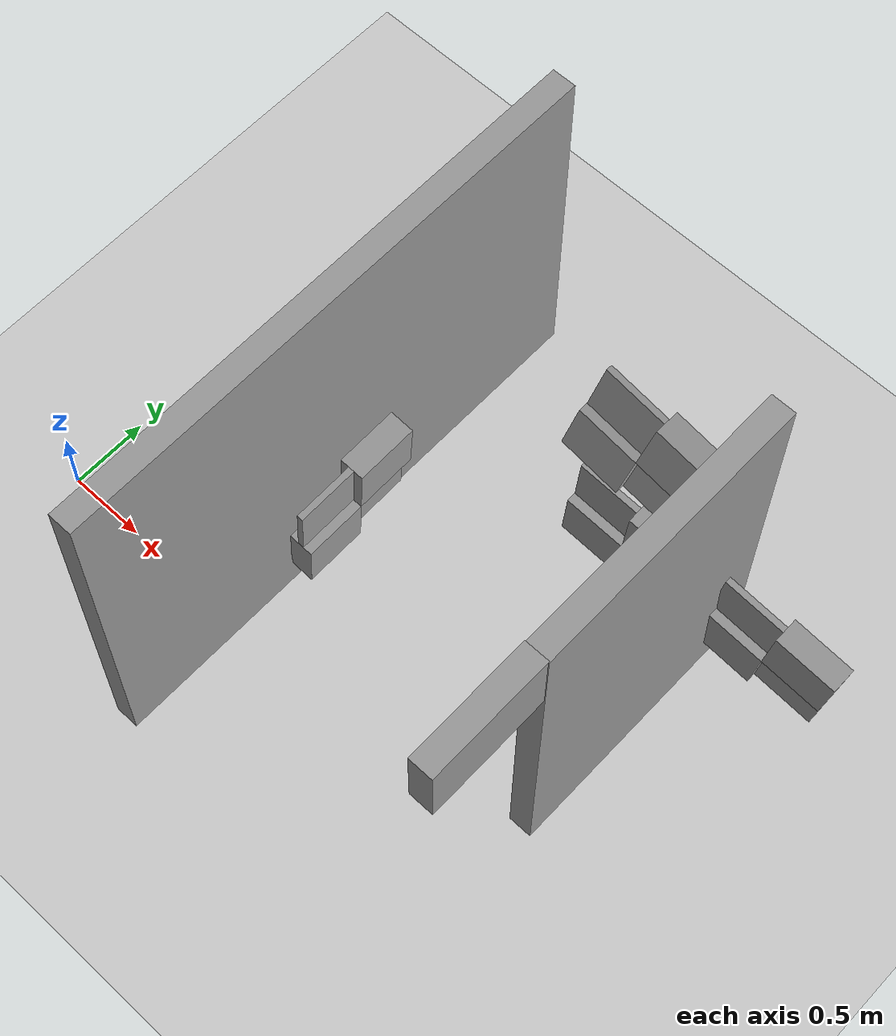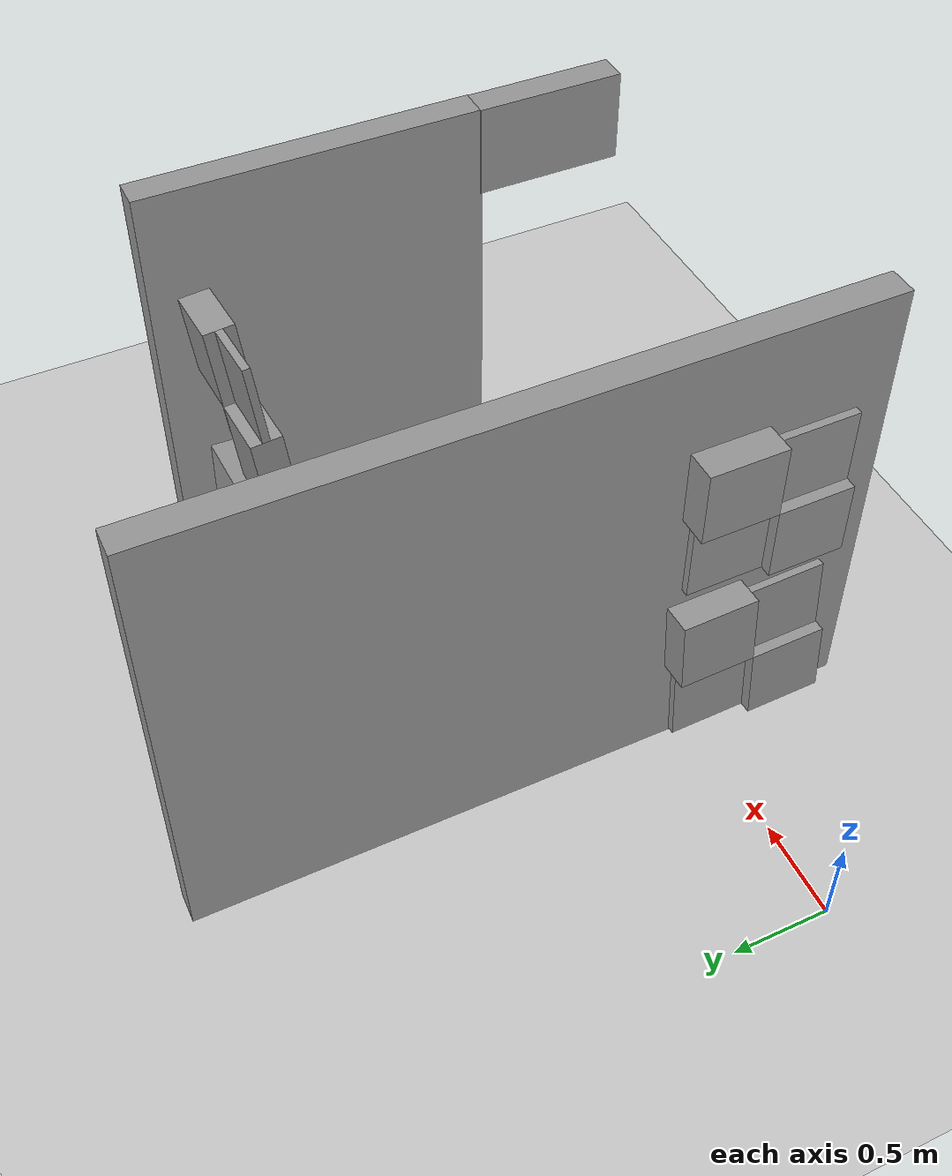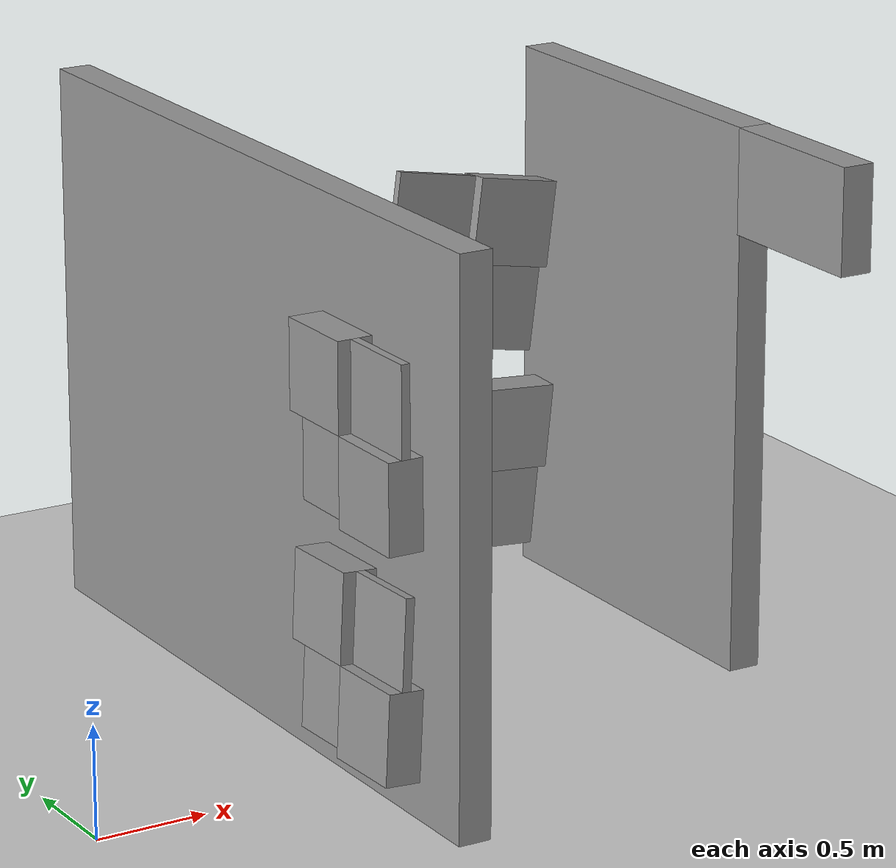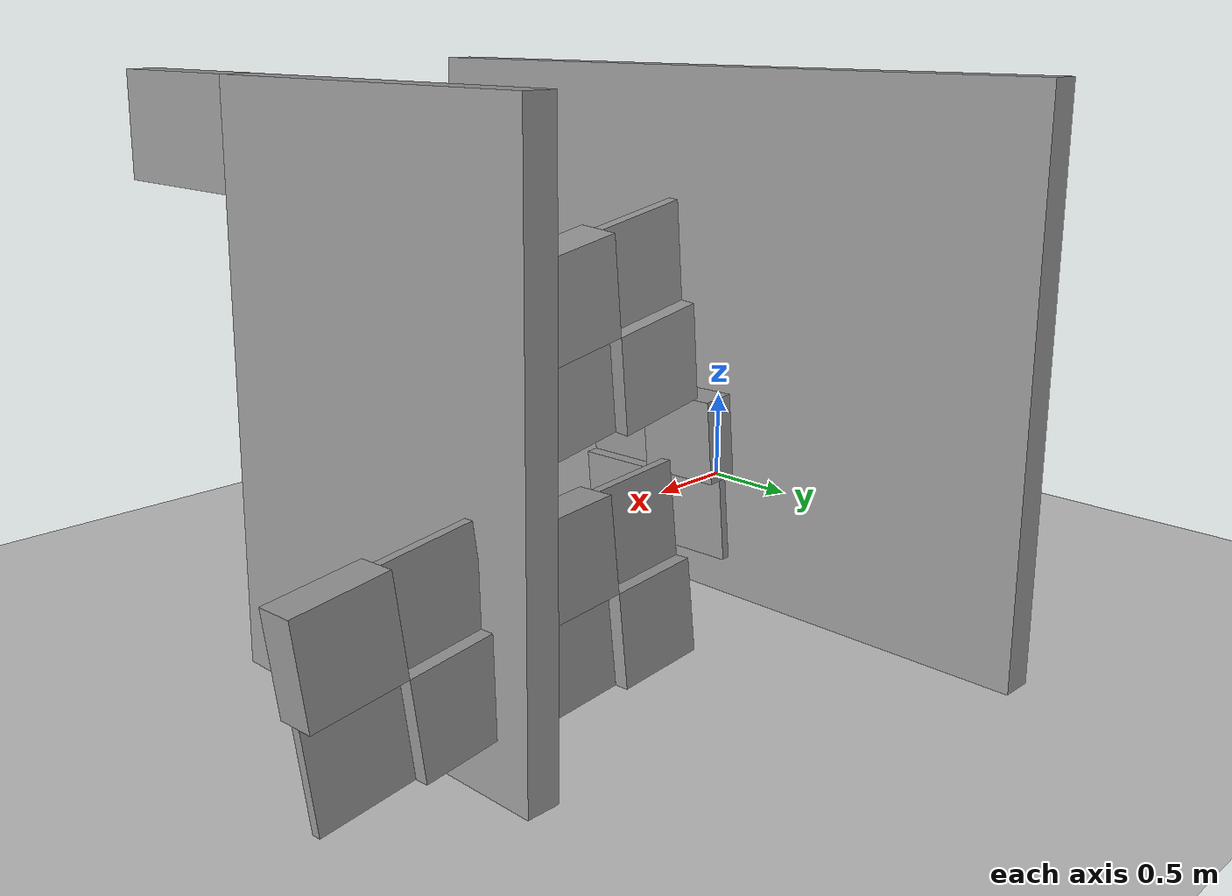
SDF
<sdf version="1.7">
 <world name="default">
  <model name="demo_clean">
   <static>1</static>
   <link name="Wall_27">
    <collision name="Wall_27_Collision">
     <geometry><box><size>3.5 0.15 2.5</size></box></geometry>
     <pose>0 0 1.25 0 -0 0</pose>
     <surface>
      <friction>
       <ode><mu>1</mu><mu2>1</mu2><fdir1>0 0 0</fdir1><slip1>0</slip1><slip2>0</slip2></ode>
       <torsional>
        <coefficient>1</coefficient>
        <patch_radius>0</patch_radius>
        <surface_radius>0</surface_radius>
        <use_patch_radius>1</use_patch_radius>
        <ode><slip>0</slip></ode>
       </torsional>
      </friction>
      <bounce><restitution_coefficient>0</restitution_coefficient><threshold>1e+06</threshold></bounce>
      <contact>
       <collide_without_contact>0</collide_without_contact>
       <collide_without_contact_bitmask>1</collide_without_contact_bitmask>
       <collide_bitmask>1</collide_bitmask>
       <ode>
        <soft_cfm>0</soft_cfm>
        <soft_erp>0.2</soft_erp>
        <kp>1e+13</kp>
        <kd>1</kd>
        <max_vel>0.01</max_vel>
        <min_depth>0</min_depth>
       </ode>
       <bullet>
        <split_impulse>1</split_impulse>
        <split_impulse_penetration_threshold>-0.01</split_impulse_penetration_threshold>
        <soft_cfm>0</soft_cfm>
        <soft_erp>0.2</soft_erp>
        <kp>1e+13</kp>
        <kd>1</kd>
       </bullet>
      </contact>
     </surface>
    </collision>
    <visual name="Wall_27_Visual">
     <geometry><box><size>3.5 0.15 2.5</size></box></geometry>
     <material>
      <script><name>Gazebo/Grey</name><uri>file://media/materials/scripts/gazebo.material</uri></script>
      <ambient>1 1 1 1</ambient>
      <shader type="pixel"><normal_map>default</normal_map></shader>
     </material>
     <pose>0 0 1.25 0 -0 0</pose>
    </visual>
    <pose>1.30016 0.927106 0 0 0 -1.5708</pose>
   </link>
   <link name="Wall_28_clone_clone_clone_clone_clone">
    <gravity>0</gravity>
    <collision name="Wall_28_Collision">
     <geometry><box><size>0.765639 0.15 0.476648</size></box></geometry>
     <pose>0 0 1.25 0 -0 0</pose>
     <surface>
      <friction>
       <ode><mu>1</mu><mu2>1</mu2><fdir1>0 0 0</fdir1><slip1>0</slip1><slip2>0</slip2></ode>
       <torsional>
        <coefficient>1</coefficient>
        <patch_radius>0</patch_radius>
        <surface_radius>0</surface_radius>
        <use_patch_radius>1</use_patch_radius>
        <ode><slip>0</slip></ode>
       </torsional>
      </friction>
      <bounce><restitution_coefficient>0</restitution_coefficient><threshold>1e+06</threshold></bounce>
      <contact>
       <collide_without_contact>0</collide_without_contact>
       <collide_without_contact_bitmask>1</collide_without_contact_bitmask>
       <collide_bitmask>1</collide_bitmask>
       <ode>
        <soft_cfm>0</soft_cfm>
        <soft_erp>0.2</soft_erp>
        <kp>1e+13</kp>
        <kd>1</kd>
        <max_vel>0.01</max_vel>
        <min_depth>0</min_depth>
       </ode>
       <bullet>
        <split_impulse>1</split_impulse>
        <split_impulse_penetration_threshold>-0.01</split_impulse_penetration_threshold>
        <soft_cfm>0</soft_cfm>
        <soft_erp>0.2</soft_erp>
        <kp>1e+13</kp>
        <kd>1</kd>
       </bullet>
      </contact>
     </surface>
    </collision>
    <visual name="Wall_28_Visual">
     <geometry><box><size>0.765639 0.15 0.476648</size></box></geometry>
     <material>
      <script><name>Gazebo/Grey</name><uri>file://media/materials/scripts/gazebo.material</uri></script>
      <ambient>1 1 1 1</ambient>
      <shader type="pixel"><normal_map>__default__</normal_map></shader>
     </material>
     <pose>0 0 1.25 0 -0 0</pose>
    </visual>
    <inertial>
     <inertia><ixx>0</ixx><iyy>0</iyy><izz>0</izz><ixy>0</ixy><ixz>0</ixz><iyz>0</iyz></inertia>
     <mass>1</mass>
    </inertial>
    <pose>3.33099 -0.160303 1.01168 0 0 -1.57004</pose>
   </link>
   <link name="Wall_46">
    <collision name="Wall_46_Collision">
     <geometry><box><size>1.75 0.15 2.5</size></box></geometry>
     <pose>0 0 1.25 0 -0 0</pose>
     <surface>
      <friction>
       <ode><mu>1</mu><mu2>1</mu2><fdir1>0 0 0</fdir1><slip1>0</slip1><slip2>0</slip2></ode>
       <torsional>
        <coefficient>1</coefficient>
        <patch_radius>0</patch_radius>
        <surface_radius>0</surface_radius>
        <use_patch_radius>1</use_patch_radius>
        <ode><slip>0</slip></ode>
       </torsional>
      </friction>
      <bounce><restitution_coefficient>0</restitution_coefficient><threshold>1e+06</threshold></bounce>
      <contact>
       <collide_without_contact>0</collide_without_contact>
       <collide_without_contact_bitmask>1</collide_without_contact_bitmask>
       <collide_bitmask>1</collide_bitmask>
       <ode>
        <soft_cfm>0</soft_cfm>
        <soft_erp>0.2</soft_erp>
        <kp>1e+13</kp>
        <kd>1</kd>
        <max_vel>0.01</max_vel>
        <min_depth>0</min_depth>
       </ode>
       <bullet>
        <split_impulse>1</split_impulse>
        <split_impulse_penetration_threshold>-0.01</split_impulse_penetration_threshold>
        <soft_cfm>0</soft_cfm>
        <soft_erp>0.2</soft_erp>
        <kp>1e+13</kp>
        <kd>1</kd>
       </bullet>
      </contact>
     </surface>
    </collision>
    <visual name="Wall_46_Visual">
     <geometry><box><size>1.75 0.15 2.5</size></box></geometry>
     <material>
      <script><name>Gazebo/Grey</name><uri>file://media/materials/scripts/gazebo.material</uri></script>
      <ambient>1 1 1 1</ambient>
      <shader type="pixel"><normal_map>default</normal_map></shader>
     </material>
     <pose>0 0 1.25 0 -0 0</pose>
    </visual>
    <pose>3.33603 1.08929 0 0 0 -1.5708</pose>
   </link>
  </model>
  <model name="ground_plane">
   <static>1</static>
   <link name="link">
    <collision name="collision">
     <geometry><plane><normal>0 0 1</normal><size>100 100</size></plane></geometry>
     <surface>
      <contact><collide_bitmask>65535</collide_bitmask></contact>
      <friction><ode><mu>100</mu><mu2>50</mu2></ode></friction>
     </surface>
    </collision>
    <visual name="visual">
     <cast_shadows>0</cast_shadows>
     <geometry><plane><normal>0 0 1</normal><size>100 100</size></plane></geometry>
     <material>
      <script><uri>file://media/materials/scripts/gazebo.material</uri><name>Gazebo/Grey</name></script>
     </material>
    </visual>
   </link>
  </model>
  <model name="wall_slate_23">
   <static>1</static>
   <link name="link_0">
    <inertial><mass>1</mass></inertial>
    <gravity>0</gravity>
    <visual name="visual">
     <pose>0 0.2 0.2 0 -0 0</pose>
     <geometry><box><size>0.16 0.4 0.4</size></box></geometry>
     <material>
      <lighting>1</lighting>
      <script><uri>file://media/materials/scripts/gazebo.material</uri><name>Gazebo/Grey</name></script>
      <shader type="pixel"><normal_map>__default__</normal_map></shader>
      <ambient>0.3 0.3 0.3 1</ambient>
      <diffuse>0.7 0.7 0.7 1</diffuse>
      <specular>0.01 0.01 0.01 1</specular>
      <emissive>0 0 0 1</emissive>
     </material>
    </visual>
    <visual name="ModelPreview_0::link_0::visual_1">
     <pose>0 0.2 -0.2 0 -0 0</pose>
     <geometry><box><size>0.04 0.4 0.4</size></box></geometry>
     <material>
      <lighting>1</lighting>
      <script><uri>file://media/materials/scripts/gazebo.material</uri><name>Gazebo/Grey</name></script>
      <shader type="pixel"><normal_map>__default__</normal_map></shader>
      <ambient>0.3 0.3 0.3 1</ambient>
      <diffuse>0.7 0.7 0.7 1</diffuse>
      <specular>0.01 0.01 0.01 1</specular>
      <emissive>0 0 0 1</emissive>
     </material>
    </visual>
    <visual name="ModelPreview_0::link_0::visual_2">
     <pose>0 -0.2 0.2 0 -0 0</pose>
     <geometry><box><size>0.04 0.4 0.4</size></box></geometry>
     <material>
      <lighting>1</lighting>
      <script><uri>file://media/materials/scripts/gazebo.material</uri><name>Gazebo/Grey</name></script>
      <shader type="pixel"><normal_map>__default__</normal_map></shader>
      <ambient>0.3 0.3 0.3 1</ambient>
      <diffuse>0.7 0.7 0.7 1</diffuse>
      <specular>0.01 0.01 0.01 1</specular>
      <emissive>0 0 0 1</emissive>
     </material>
    </visual>
    <visual name="ModelPreview_0::link_0::visual_3">
     <pose>0 -0.2 -0.2 0 -0 0</pose>
     <geometry><box><size>0.16 0.4 0.4</size></box></geometry>
     <material>
      <lighting>1</lighting>
      <script><uri>file://media/materials/scripts/gazebo.material</uri><name>Gazebo/Grey</name></script>
      <shader type="pixel"><normal_map>__default__</normal_map></shader>
      <ambient>0.3 0.3 0.3 1</ambient>
      <diffuse>0.7 0.7 0.7 1</diffuse>
      <specular>0.01 0.01 0.01 1</specular>
      <emissive>0 0 0 1</emissive>
     </material>
    </visual>
    <collision name="collision_2">
     <pose>0 -0.2 0.2 0 -0 0</pose>
     <geometry><box><size>0.04 0.4 0.4</size></box></geometry>
     <surface>
      <friction>
       <ode><mu>1</mu><mu2>1</mu2><fdir1>0 0 0</fdir1><slip1>0</slip1><slip2>0</slip2></ode>
       <torsional>
        <coefficient>1</coefficient>
        <patch_radius>0</patch_radius>
        <surface_radius>0</surface_radius>
        <use_patch_radius>1</use_patch_radius>
        <ode><slip>0</slip></ode>
       </torsional>
      </friction>
      <bounce><restitution_coefficient>0</restitution_coefficient><threshold>1e+06</threshold></bounce>
      <contact>
       <collide_without_contact>0</collide_without_contact>
       <collide_without_contact_bitmask>1</collide_without_contact_bitmask>
       <collide_bitmask>1</collide_bitmask>
       <ode>
        <soft_cfm>0</soft_cfm>
        <soft_erp>0.2</soft_erp>
        <kp>1e+13</kp>
        <kd>1</kd>
        <max_vel>0.01</max_vel>
        <min_depth>0</min_depth>
       </ode>
       <bullet>
        <split_impulse>1</split_impulse>
        <split_impulse_penetration_threshold>-0.01</split_impulse_penetration_threshold>
        <soft_cfm>0</soft_cfm>
        <soft_erp>0.2</soft_erp>
        <kp>1e+13</kp>
        <kd>1</kd>
       </bullet>
      </contact>
     </surface>
    </collision>
    <collision name="collision_1">
     <pose>0 0.2 -0.2 0 -0 0</pose>
     <geometry><box><size>0.04 0.4 0.4</size></box></geometry>
     <surface>
      <friction>
       <ode><mu>1</mu><mu2>1</mu2><fdir1>0 0 0</fdir1><slip1>0</slip1><slip2>0</slip2></ode>
       <torsional>
        <coefficient>1</coefficient>
        <patch_radius>0</patch_radius>
        <surface_radius>0</surface_radius>
        <use_patch_radius>1</use_patch_radius>
        <ode><slip>0</slip></ode>
       </torsional>
      </friction>
      <bounce><restitution_coefficient>0</restitution_coefficient><threshold>1e+06</threshold></bounce>
      <contact>
       <collide_without_contact>0</collide_without_contact>
       <collide_without_contact_bitmask>1</collide_without_contact_bitmask>
       <collide_bitmask>1</collide_bitmask>
       <ode>
        <soft_cfm>0</soft_cfm>
        <soft_erp>0.2</soft_erp>
        <kp>1e+13</kp>
        <kd>1</kd>
        <max_vel>0.01</max_vel>
        <min_depth>0</min_depth>
       </ode>
       <bullet>
        <split_impulse>1</split_impulse>
        <split_impulse_penetration_threshold>-0.01</split_impulse_penetration_threshold>
        <soft_cfm>0</soft_cfm>
        <soft_erp>0.2</soft_erp>
        <kp>1e+13</kp>
        <kd>1</kd>
       </bullet>
      </contact>
     </surface>
    </collision>
    <collision name="collision_4">
     <pose>0 0.2 0.2 0 -0 0</pose>
     <geometry><box><size>0.16 0.4 0.4</size></box></geometry>
     <surface>
      <friction>
       <ode><mu>1</mu><mu2>1</mu2><fdir1>0 0 0</fdir1><slip1>0</slip1><slip2>0</slip2></ode>
       <torsional>
        <coefficient>1</coefficient>
        <patch_radius>0</patch_radius>
        <surface_radius>0</surface_radius>
        <use_patch_radius>1</use_patch_radius>
        <ode><slip>0</slip></ode>
       </torsional>
      </friction>
      <bounce><restitution_coefficient>0</restitution_coefficient><threshold>1e+06</threshold></bounce>
      <contact>
       <collide_without_contact>0</collide_without_contact>
       <collide_without_contact_bitmask>1</collide_without_contact_bitmask>
       <collide_bitmask>1</collide_bitmask>
       <ode>
        <soft_cfm>0</soft_cfm>
        <soft_erp>0.2</soft_erp>
        <kp>1e+13</kp>
        <kd>1</kd>
        <max_vel>0.01</max_vel>
        <min_depth>0</min_depth>
       </ode>
       <bullet>
        <split_impulse>1</split_impulse>
        <split_impulse_penetration_threshold>-0.01</split_impulse_penetration_threshold>
        <soft_cfm>0</soft_cfm>
        <soft_erp>0.2</soft_erp>
        <kp>1e+13</kp>
        <kd>1</kd>
       </bullet>
      </contact>
     </surface>
    </collision>
    <collision name="collision_3">
     <pose>0 -0.2 -0.2 0 -0 0</pose>
     <geometry><box><size>0.16 0.4 0.4</size></box></geometry>
     <surface>
      <friction>
       <ode><mu>1</mu><mu2>1</mu2><fdir1>0 0 0</fdir1><slip1>0</slip1><slip2>0</slip2></ode>
       <torsional>
        <coefficient>1</coefficient>
        <patch_radius>0</patch_radius>
        <surface_radius>0</surface_radius>
        <use_patch_radius>1</use_patch_radius>
        <ode><slip>0</slip></ode>
       </torsional>
      </friction>
      <bounce><restitution_coefficient>0</restitution_coefficient><threshold>1e+06</threshold></bounce>
      <contact>
       <collide_without_contact>0</collide_without_contact>
       <collide_without_contact_bitmask>1</collide_without_contact_bitmask>
       <collide_bitmask>1</collide_bitmask>
       <ode>
        <soft_cfm>0</soft_cfm>
        <soft_erp>0.2</soft_erp>
        <kp>1e+13</kp>
        <kd>1</kd>
        <max_vel>0.01</max_vel>
        <min_depth>0</min_depth>
       </ode>
       <bullet>
        <split_impulse>1</split_impulse>
        <split_impulse_penetration_threshold>-0.01</split_impulse_penetration_threshold>
        <soft_cfm>0</soft_cfm>
        <soft_erp>0.2</soft_erp>
        <kp>1e+13</kp>
        <kd>1</kd>
       </bullet>
      </contact>
     </surface>
    </collision>
   </link>
   <pose>3.77851 1.71618 0.6 -0.12 0.04 -1.5659</pose>
  </model>
  <model name="wall_slate_34">
   <static>1</static>
   <link name="link_0">
    <inertial><mass>1</mass></inertial>
    <gravity>0</gravity>
    <visual name="visual">
     <pose>0 0.2 0.2 0 -0 0</pose>
     <geometry><box><size>0.16 0.4 0.4</size></box></geometry>
     <material>
      <lighting>1</lighting>
      <script><uri>file://media/materials/scripts/gazebo.material</uri><name>Gazebo/Grey</name></script>
      <shader type="pixel"><normal_map>__default__</normal_map></shader>
      <ambient>0.3 0.3 0.3 1</ambient>
      <diffuse>0.7 0.7 0.7 1</diffuse>
      <specular>0.01 0.01 0.01 1</specular>
      <emissive>0 0 0 1</emissive>
     </material>
    </visual>
    <visual name="ModelPreview_0::link_0::visual_1">
     <pose>0 0.2 -0.2 0 -0 0</pose>
     <geometry><box><size>0.04 0.4 0.4</size></box></geometry>
     <material>
      <lighting>1</lighting>
      <script><uri>file://media/materials/scripts/gazebo.material</uri><name>Gazebo/Grey</name></script>
      <shader type="pixel"><normal_map>__default__</normal_map></shader>
      <ambient>0.3 0.3 0.3 1</ambient>
      <diffuse>0.7 0.7 0.7 1</diffuse>
      <specular>0.01 0.01 0.01 1</specular>
      <emissive>0 0 0 1</emissive>
     </material>
    </visual>
    <visual name="ModelPreview_0::link_0::visual_2">
     <pose>0 -0.2 0.2 0 -0 0</pose>
     <geometry><box><size>0.04 0.4 0.4</size></box></geometry>
     <material>
      <lighting>1</lighting>
      <script><uri>file://media/materials/scripts/gazebo.material</uri><name>Gazebo/Grey</name></script>
      <shader type="pixel"><normal_map>__default__</normal_map></shader>
      <ambient>0.3 0.3 0.3 1</ambient>
      <diffuse>0.7 0.7 0.7 1</diffuse>
      <specular>0.01 0.01 0.01 1</specular>
      <emissive>0 0 0 1</emissive>
     </material>
    </visual>
    <visual name="ModelPreview_0::link_0::visual_3">
     <pose>0 -0.2 -0.2 0 -0 0</pose>
     <geometry><box><size>0.16 0.4 0.4</size></box></geometry>
     <material>
      <lighting>1</lighting>
      <script><uri>file://media/materials/scripts/gazebo.material</uri><name>Gazebo/Grey</name></script>
      <shader type="pixel"><normal_map>__default__</normal_map></shader>
      <ambient>0.3 0.3 0.3 1</ambient>
      <diffuse>0.7 0.7 0.7 1</diffuse>
      <specular>0.01 0.01 0.01 1</specular>
      <emissive>0 0 0 1</emissive>
     </material>
    </visual>
    <collision name="collision_2">
     <pose>0 -0.2 0.2 0 -0 0</pose>
     <geometry><box><size>0.04 0.4 0.4</size></box></geometry>
     <surface>
      <friction>
       <ode><mu>1</mu><mu2>1</mu2><fdir1>0 0 0</fdir1><slip1>0</slip1><slip2>0</slip2></ode>
       <torsional>
        <coefficient>1</coefficient>
        <patch_radius>0</patch_radius>
        <surface_radius>0</surface_radius>
        <use_patch_radius>1</use_patch_radius>
        <ode><slip>0</slip></ode>
       </torsional>
      </friction>
      <bounce><restitution_coefficient>0</restitution_coefficient><threshold>1e+06</threshold></bounce>
      <contact>
       <collide_without_contact>0</collide_without_contact>
       <collide_without_contact_bitmask>1</collide_without_contact_bitmask>
       <collide_bitmask>1</collide_bitmask>
       <ode>
        <soft_cfm>0</soft_cfm>
        <soft_erp>0.2</soft_erp>
        <kp>1e+13</kp>
        <kd>1</kd>
        <max_vel>0.01</max_vel>
        <min_depth>0</min_depth>
       </ode>
       <bullet>
        <split_impulse>1</split_impulse>
        <split_impulse_penetration_threshold>-0.01</split_impulse_penetration_threshold>
        <soft_cfm>0</soft_cfm>
        <soft_erp>0.2</soft_erp>
        <kp>1e+13</kp>
        <kd>1</kd>
       </bullet>
      </contact>
     </surface>
    </collision>
    <collision name="collision_1">
     <pose>0 0.2 -0.2 0 -0 0</pose>
     <geometry><box><size>0.04 0.4 0.4</size></box></geometry>
     <surface>
      <friction>
       <ode><mu>1</mu><mu2>1</mu2><fdir1>0 0 0</fdir1><slip1>0</slip1><slip2>0</slip2></ode>
       <torsional>
        <coefficient>1</coefficient>
        <patch_radius>0</patch_radius>
        <surface_radius>0</surface_radius>
        <use_patch_radius>1</use_patch_radius>
        <ode><slip>0</slip></ode>
       </torsional>
      </friction>
      <bounce><restitution_coefficient>0</restitution_coefficient><threshold>1e+06</threshold></bounce>
      <contact>
       <collide_without_contact>0</collide_without_contact>
       <collide_without_contact_bitmask>1</collide_without_contact_bitmask>
       <collide_bitmask>1</collide_bitmask>
       <ode>
        <soft_cfm>0</soft_cfm>
        <soft_erp>0.2</soft_erp>
        <kp>1e+13</kp>
        <kd>1</kd>
        <max_vel>0.01</max_vel>
        <min_depth>0</min_depth>
       </ode>
       <bullet>
        <split_impulse>1</split_impulse>
        <split_impulse_penetration_threshold>-0.01</split_impulse_penetration_threshold>
        <soft_cfm>0</soft_cfm>
        <soft_erp>0.2</soft_erp>
        <kp>1e+13</kp>
        <kd>1</kd>
       </bullet>
      </contact>
     </surface>
    </collision>
    <collision name="collision_4">
     <pose>0 0.2 0.2 0 -0 0</pose>
     <geometry><box><size>0.16 0.4 0.4</size></box></geometry>
     <surface>
      <friction>
       <ode><mu>1</mu><mu2>1</mu2><fdir1>0 0 0</fdir1><slip1>0</slip1><slip2>0</slip2></ode>
       <torsional>
        <coefficient>1</coefficient>
        <patch_radius>0</patch_radius>
        <surface_radius>0</surface_radius>
        <use_patch_radius>1</use_patch_radius>
        <ode><slip>0</slip></ode>
       </torsional>
      </friction>
      <bounce><restitution_coefficient>0</restitution_coefficient><threshold>1e+06</threshold></bounce>
      <contact>
       <collide_without_contact>0</collide_without_contact>
       <collide_without_contact_bitmask>1</collide_without_contact_bitmask>
       <collide_bitmask>1</collide_bitmask>
       <ode>
        <soft_cfm>0</soft_cfm>
        <soft_erp>0.2</soft_erp>
        <kp>1e+13</kp>
        <kd>1</kd>
        <max_vel>0.01</max_vel>
        <min_depth>0</min_depth>
       </ode>
       <bullet>
        <split_impulse>1</split_impulse>
        <split_impulse_penetration_threshold>-0.01</split_impulse_penetration_threshold>
        <soft_cfm>0</soft_cfm>
        <soft_erp>0.2</soft_erp>
        <kp>1e+13</kp>
        <kd>1</kd>
       </bullet>
      </contact>
     </surface>
    </collision>
    <collision name="collision_3">
     <pose>0 -0.2 -0.2 0 -0 0</pose>
     <geometry><box><size>0.16 0.4 0.4</size></box></geometry>
     <surface>
      <friction>
       <ode><mu>1</mu><mu2>1</mu2><fdir1>0 0 0</fdir1><slip1>0</slip1><slip2>0</slip2></ode>
       <torsional>
        <coefficient>1</coefficient>
        <patch_radius>0</patch_radius>
        <surface_radius>0</surface_radius>
        <use_patch_radius>1</use_patch_radius>
        <ode><slip>0</slip></ode>
       </torsional>
      </friction>
      <bounce><restitution_coefficient>0</restitution_coefficient><threshold>1e+06</threshold></bounce>
      <contact>
       <collide_without_contact>0</collide_without_contact>
       <collide_without_contact_bitmask>1</collide_without_contact_bitmask>
       <collide_bitmask>1</collide_bitmask>
       <ode>
        <soft_cfm>0</soft_cfm>
        <soft_erp>0.2</soft_erp>
        <kp>1e+13</kp>
        <kd>1</kd>
        <max_vel>0.01</max_vel>
        <min_depth>0</min_depth>
       </ode>
       <bullet>
        <split_impulse>1</split_impulse>
        <split_impulse_penetration_threshold>-0.01</split_impulse_penetration_threshold>
        <soft_cfm>0</soft_cfm>
        <soft_erp>0.2</soft_erp>
        <kp>1e+13</kp>
        <kd>1</kd>
       </bullet>
      </contact>
     </surface>
    </collision>
   </link>
   <pose>2.77851 1.71618 0.6 -0.08 0.04 -1.5659</pose>
  </model>
  <model name="wall_slate_39">
   <static>1</static>
   <link name="link_0">
    <inertial><mass>1</mass></inertial>
    <gravity>0</gravity>
    <visual name="visual">
     <pose>0 0.2 0.2 0 -0 0</pose>
     <geometry><box><size>0.16 0.4 0.4</size></box></geometry>
     <material>
      <lighting>1</lighting>
      <script><uri>file://media/materials/scripts/gazebo.material</uri><name>Gazebo/Grey</name></script>
      <shader type="pixel"><normal_map>__default__</normal_map></shader>
      <ambient>0.3 0.3 0.3 1</ambient>
      <diffuse>0.7 0.7 0.7 1</diffuse>
      <specular>0.01 0.01 0.01 1</specular>
      <emissive>0 0 0 1</emissive>
     </material>
    </visual>
    <visual name="ModelPreview_0::link_0::visual_1">
     <pose>0 0.2 -0.2 0 -0 0</pose>
     <geometry><box><size>0.04 0.4 0.4</size></box></geometry>
     <material>
      <lighting>1</lighting>
      <script><uri>file://media/materials/scripts/gazebo.material</uri><name>Gazebo/Grey</name></script>
      <shader type="pixel"><normal_map>__default__</normal_map></shader>
      <ambient>0.3 0.3 0.3 1</ambient>
      <diffuse>0.7 0.7 0.7 1</diffuse>
      <specular>0.01 0.01 0.01 1</specular>
      <emissive>0 0 0 1</emissive>
     </material>
    </visual>
    <visual name="ModelPreview_0::link_0::visual_2">
     <pose>0 -0.2 0.2 0 -0 0</pose>
     <geometry><box><size>0.04 0.4 0.4</size></box></geometry>
     <material>
      <lighting>1</lighting>
      <script><uri>file://media/materials/scripts/gazebo.material</uri><name>Gazebo/Grey</name></script>
      <shader type="pixel"><normal_map>__default__</normal_map></shader>
      <ambient>0.3 0.3 0.3 1</ambient>
      <diffuse>0.7 0.7 0.7 1</diffuse>
      <specular>0.01 0.01 0.01 1</specular>
      <emissive>0 0 0 1</emissive>
     </material>
    </visual>
    <visual name="ModelPreview_0::link_0::visual_3">
     <pose>0 -0.2 -0.2 0 -0 0</pose>
     <geometry><box><size>0.16 0.4 0.4</size></box></geometry>
     <material>
      <lighting>1</lighting>
      <script><uri>file://media/materials/scripts/gazebo.material</uri><name>Gazebo/Grey</name></script>
      <shader type="pixel"><normal_map>__default__</normal_map></shader>
      <ambient>0.3 0.3 0.3 1</ambient>
      <diffuse>0.7 0.7 0.7 1</diffuse>
      <specular>0.01 0.01 0.01 1</specular>
      <emissive>0 0 0 1</emissive>
     </material>
    </visual>
    <collision name="collision_2">
     <pose>0 -0.2 0.2 0 -0 0</pose>
     <geometry><box><size>0.04 0.4 0.4</size></box></geometry>
     <surface>
      <friction>
       <ode><mu>1</mu><mu2>1</mu2><fdir1>0 0 0</fdir1><slip1>0</slip1><slip2>0</slip2></ode>
       <torsional>
        <coefficient>1</coefficient>
        <patch_radius>0</patch_radius>
        <surface_radius>0</surface_radius>
        <use_patch_radius>1</use_patch_radius>
        <ode><slip>0</slip></ode>
       </torsional>
      </friction>
      <bounce><restitution_coefficient>0</restitution_coefficient><threshold>1e+06</threshold></bounce>
      <contact>
       <collide_without_contact>0</collide_without_contact>
       <collide_without_contact_bitmask>1</collide_without_contact_bitmask>
       <collide_bitmask>1</collide_bitmask>
       <ode>
        <soft_cfm>0</soft_cfm>
        <soft_erp>0.2</soft_erp>
        <kp>1e+13</kp>
        <kd>1</kd>
        <max_vel>0.01</max_vel>
        <min_depth>0</min_depth>
       </ode>
       <bullet>
        <split_impulse>1</split_impulse>
        <split_impulse_penetration_threshold>-0.01</split_impulse_penetration_threshold>
        <soft_cfm>0</soft_cfm>
        <soft_erp>0.2</soft_erp>
        <kp>1e+13</kp>
        <kd>1</kd>
       </bullet>
      </contact>
     </surface>
    </collision>
    <collision name="collision_1">
     <pose>0 0.2 -0.2 0 -0 0</pose>
     <geometry><box><size>0.04 0.4 0.4</size></box></geometry>
     <surface>
      <friction>
       <ode><mu>1</mu><mu2>1</mu2><fdir1>0 0 0</fdir1><slip1>0</slip1><slip2>0</slip2></ode>
       <torsional>
        <coefficient>1</coefficient>
        <patch_radius>0</patch_radius>
        <surface_radius>0</surface_radius>
        <use_patch_radius>1</use_patch_radius>
        <ode><slip>0</slip></ode>
       </torsional>
      </friction>
      <bounce><restitution_coefficient>0</restitution_coefficient><threshold>1e+06</threshold></bounce>
      <contact>
       <collide_without_contact>0</collide_without_contact>
       <collide_without_contact_bitmask>1</collide_without_contact_bitmask>
       <collide_bitmask>1</collide_bitmask>
       <ode>
        <soft_cfm>0</soft_cfm>
        <soft_erp>0.2</soft_erp>
        <kp>1e+13</kp>
        <kd>1</kd>
        <max_vel>0.01</max_vel>
        <min_depth>0</min_depth>
       </ode>
       <bullet>
        <split_impulse>1</split_impulse>
        <split_impulse_penetration_threshold>-0.01</split_impulse_penetration_threshold>
        <soft_cfm>0</soft_cfm>
        <soft_erp>0.2</soft_erp>
        <kp>1e+13</kp>
        <kd>1</kd>
       </bullet>
      </contact>
     </surface>
    </collision>
    <collision name="collision_4">
     <pose>0 0.2 0.2 0 -0 0</pose>
     <geometry><box><size>0.16 0.4 0.4</size></box></geometry>
     <surface>
      <friction>
       <ode><mu>1</mu><mu2>1</mu2><fdir1>0 0 0</fdir1><slip1>0</slip1><slip2>0</slip2></ode>
       <torsional>
        <coefficient>1</coefficient>
        <patch_radius>0</patch_radius>
        <surface_radius>0</surface_radius>
        <use_patch_radius>1</use_patch_radius>
        <ode><slip>0</slip></ode>
       </torsional>
      </friction>
      <bounce><restitution_coefficient>0</restitution_coefficient><threshold>1e+06</threshold></bounce>
      <contact>
       <collide_without_contact>0</collide_without_contact>
       <collide_without_contact_bitmask>1</collide_without_contact_bitmask>
       <collide_bitmask>1</collide_bitmask>
       <ode>
        <soft_cfm>0</soft_cfm>
        <soft_erp>0.2</soft_erp>
        <kp>1e+13</kp>
        <kd>1</kd>
        <max_vel>0.01</max_vel>
        <min_depth>0</min_depth>
       </ode>
       <bullet>
        <split_impulse>1</split_impulse>
        <split_impulse_penetration_threshold>-0.01</split_impulse_penetration_threshold>
        <soft_cfm>0</soft_cfm>
        <soft_erp>0.2</soft_erp>
        <kp>1e+13</kp>
        <kd>1</kd>
       </bullet>
      </contact>
     </surface>
    </collision>
    <collision name="collision_3">
     <pose>0 -0.2 -0.2 0 -0 0</pose>
     <geometry><box><size>0.16 0.4 0.4</size></box></geometry>
     <surface>
      <friction>
       <ode><mu>1</mu><mu2>1</mu2><fdir1>0 0 0</fdir1><slip1>0</slip1><slip2>0</slip2></ode>
       <torsional>
        <coefficient>1</coefficient>
        <patch_radius>0</patch_radius>
        <surface_radius>0</surface_radius>
        <use_patch_radius>1</use_patch_radius>
        <ode><slip>0</slip></ode>
       </torsional>
      </friction>
      <bounce><restitution_coefficient>0</restitution_coefficient><threshold>1e+06</threshold></bounce>
      <contact>
       <collide_without_contact>0</collide_without_contact>
       <collide_without_contact_bitmask>1</collide_without_contact_bitmask>
       <collide_bitmask>1</collide_bitmask>
       <ode>
        <soft_cfm>0</soft_cfm>
        <soft_erp>0.2</soft_erp>
        <kp>1e+13</kp>
        <kd>1</kd>
        <max_vel>0.01</max_vel>
        <min_depth>0</min_depth>
       </ode>
       <bullet>
        <split_impulse>1</split_impulse>
        <split_impulse_penetration_threshold>-0.01</split_impulse_penetration_threshold>
        <soft_cfm>0</soft_cfm>
        <soft_erp>0.2</soft_erp>
        <kp>1e+13</kp>
        <kd>1</kd>
       </bullet>
      </contact>
     </surface>
    </collision>
   </link>
   <pose>2.77851 1.71618 1.6 -0.18 -0.08 -1.5659</pose>
  </model>
  <model name="wall_slate_74">
   <static>1</static>
   <link name="link_0">
    <inertial><mass>1</mass></inertial>
    <gravity>0</gravity>
    <visual name="visual">
     <pose>0 0.2 0.2 0 -0 0</pose>
     <geometry><box><size>0.16 0.4 0.4</size></box></geometry>
     <material>
      <lighting>1</lighting>
      <script><uri>file://media/materials/scripts/gazebo.material</uri><name>Gazebo/Grey</name></script>
      <shader type="pixel"><normal_map>__default__</normal_map></shader>
      <ambient>0.3 0.3 0.3 1</ambient>
      <diffuse>0.7 0.7 0.7 1</diffuse>
      <specular>0.01 0.01 0.01 1</specular>
      <emissive>0 0 0 1</emissive>
     </material>
    </visual>
    <visual name="ModelPreview_0::link_0::visual_1">
     <pose>0 0.2 -0.2 0 -0 0</pose>
     <geometry><box><size>0.04 0.4 0.4</size></box></geometry>
     <material>
      <lighting>1</lighting>
      <script><uri>file://media/materials/scripts/gazebo.material</uri><name>Gazebo/Grey</name></script>
      <shader type="pixel"><normal_map>__default__</normal_map></shader>
      <ambient>0.3 0.3 0.3 1</ambient>
      <diffuse>0.7 0.7 0.7 1</diffuse>
      <specular>0.01 0.01 0.01 1</specular>
      <emissive>0 0 0 1</emissive>
     </material>
    </visual>
    <visual name="ModelPreview_0::link_0::visual_2">
     <pose>0 -0.2 0.2 0 -0 0</pose>
     <geometry><box><size>0.04 0.4 0.4</size></box></geometry>
     <material>
      <lighting>1</lighting>
      <script><uri>file://media/materials/scripts/gazebo.material</uri><name>Gazebo/Grey</name></script>
      <shader type="pixel"><normal_map>__default__</normal_map></shader>
      <ambient>0.3 0.3 0.3 1</ambient>
      <diffuse>0.7 0.7 0.7 1</diffuse>
      <specular>0.01 0.01 0.01 1</specular>
      <emissive>0 0 0 1</emissive>
     </material>
    </visual>
    <visual name="ModelPreview_0::link_0::visual_3">
     <pose>0 -0.2 -0.2 0 -0 0</pose>
     <geometry><box><size>0.16 0.4 0.4</size></box></geometry>
     <material>
      <lighting>1</lighting>
      <script><uri>file://media/materials/scripts/gazebo.material</uri><name>Gazebo/Grey</name></script>
      <shader type="pixel"><normal_map>__default__</normal_map></shader>
      <ambient>0.3 0.3 0.3 1</ambient>
      <diffuse>0.7 0.7 0.7 1</diffuse>
      <specular>0.01 0.01 0.01 1</specular>
      <emissive>0 0 0 1</emissive>
     </material>
    </visual>
    <collision name="collision_2">
     <pose>0 -0.2 0.2 0 -0 0</pose>
     <geometry><box><size>0.04 0.4 0.4</size></box></geometry>
     <surface>
      <friction>
       <ode><mu>1</mu><mu2>1</mu2><fdir1>0 0 0</fdir1><slip1>0</slip1><slip2>0</slip2></ode>
       <torsional>
        <coefficient>1</coefficient>
        <patch_radius>0</patch_radius>
        <surface_radius>0</surface_radius>
        <use_patch_radius>1</use_patch_radius>
        <ode><slip>0</slip></ode>
       </torsional>
      </friction>
      <bounce><restitution_coefficient>0</restitution_coefficient><threshold>1e+06</threshold></bounce>
      <contact>
       <collide_without_contact>0</collide_without_contact>
       <collide_without_contact_bitmask>1</collide_without_contact_bitmask>
       <collide_bitmask>1</collide_bitmask>
       <ode>
        <soft_cfm>0</soft_cfm>
        <soft_erp>0.2</soft_erp>
        <kp>1e+13</kp>
        <kd>1</kd>
        <max_vel>0.01</max_vel>
        <min_depth>0</min_depth>
       </ode>
       <bullet>
        <split_impulse>1</split_impulse>
        <split_impulse_penetration_threshold>-0.01</split_impulse_penetration_threshold>
        <soft_cfm>0</soft_cfm>
        <soft_erp>0.2</soft_erp>
        <kp>1e+13</kp>
        <kd>1</kd>
       </bullet>
      </contact>
     </surface>
    </collision>
    <collision name="collision_1">
     <pose>0 0.2 -0.2 0 -0 0</pose>
     <geometry><box><size>0.04 0.4 0.4</size></box></geometry>
     <surface>
      <friction>
       <ode><mu>1</mu><mu2>1</mu2><fdir1>0 0 0</fdir1><slip1>0</slip1><slip2>0</slip2></ode>
       <torsional>
        <coefficient>1</coefficient>
        <patch_radius>0</patch_radius>
        <surface_radius>0</surface_radius>
        <use_patch_radius>1</use_patch_radius>
        <ode><slip>0</slip></ode>
       </torsional>
      </friction>
      <bounce><restitution_coefficient>0</restitution_coefficient><threshold>1e+06</threshold></bounce>
      <contact>
       <collide_without_contact>0</collide_without_contact>
       <collide_without_contact_bitmask>1</collide_without_contact_bitmask>
       <collide_bitmask>1</collide_bitmask>
       <ode>
        <soft_cfm>0</soft_cfm>
        <soft_erp>0.2</soft_erp>
        <kp>1e+13</kp>
        <kd>1</kd>
        <max_vel>0.01</max_vel>
        <min_depth>0</min_depth>
       </ode>
       <bullet>
        <split_impulse>1</split_impulse>
        <split_impulse_penetration_threshold>-0.01</split_impulse_penetration_threshold>
        <soft_cfm>0</soft_cfm>
        <soft_erp>0.2</soft_erp>
        <kp>1e+13</kp>
        <kd>1</kd>
       </bullet>
      </contact>
     </surface>
    </collision>
    <collision name="collision_4">
     <pose>0 0.2 0.2 0 -0 0</pose>
     <geometry><box><size>0.16 0.4 0.4</size></box></geometry>
     <surface>
      <friction>
       <ode><mu>1</mu><mu2>1</mu2><fdir1>0 0 0</fdir1><slip1>0</slip1><slip2>0</slip2></ode>
       <torsional>
        <coefficient>1</coefficient>
        <patch_radius>0</patch_radius>
        <surface_radius>0</surface_radius>
        <use_patch_radius>1</use_patch_radius>
        <ode><slip>0</slip></ode>
       </torsional>
      </friction>
      <bounce><restitution_coefficient>0</restitution_coefficient><threshold>1e+06</threshold></bounce>
      <contact>
       <collide_without_contact>0</collide_without_contact>
       <collide_without_contact_bitmask>1</collide_without_contact_bitmask>
       <collide_bitmask>1</collide_bitmask>
       <ode>
        <soft_cfm>0</soft_cfm>
        <soft_erp>0.2</soft_erp>
        <kp>1e+13</kp>
        <kd>1</kd>
        <max_vel>0.01</max_vel>
        <min_depth>0</min_depth>
       </ode>
       <bullet>
        <split_impulse>1</split_impulse>
        <split_impulse_penetration_threshold>-0.01</split_impulse_penetration_threshold>
        <soft_cfm>0</soft_cfm>
        <soft_erp>0.2</soft_erp>
        <kp>1e+13</kp>
        <kd>1</kd>
       </bullet>
      </contact>
     </surface>
    </collision>
    <collision name="collision_3">
     <pose>0 -0.2 -0.2 0 -0 0</pose>
     <geometry><box><size>0.16 0.4 0.4</size></box></geometry>
     <surface>
      <friction>
       <ode><mu>1</mu><mu2>1</mu2><fdir1>0 0 0</fdir1><slip1>0</slip1><slip2>0</slip2></ode>
       <torsional>
        <coefficient>1</coefficient>
        <patch_radius>0</patch_radius>
        <surface_radius>0</surface_radius>
        <use_patch_radius>1</use_patch_radius>
        <ode><slip>0</slip></ode>
       </torsional>
      </friction>
      <bounce><restitution_coefficient>0</restitution_coefficient><threshold>1e+06</threshold></bounce>
      <contact>
       <collide_without_contact>0</collide_without_contact>
       <collide_without_contact_bitmask>1</collide_without_contact_bitmask>
       <collide_bitmask>1</collide_bitmask>
       <ode>
        <soft_cfm>0</soft_cfm>
        <soft_erp>0.2</soft_erp>
        <kp>1e+13</kp>
        <kd>1</kd>
        <max_vel>0.01</max_vel>
        <min_depth>0</min_depth>
       </ode>
       <bullet>
        <split_impulse>1</split_impulse>
        <split_impulse_penetration_threshold>-0.01</split_impulse_penetration_threshold>
        <soft_cfm>0</soft_cfm>
        <soft_erp>0.2</soft_erp>
        <kp>1e+13</kp>
        <kd>1</kd>
       </bullet>
      </contact>
     </surface>
    </collision>
   </link>
   <pose>1.12516 -0.172895 1.6 0 -0 0.0049</pose>
  </model>
  <model name="wall_slate_94">
   <static>1</static>
   <link name="link_0">
    <inertial><mass>1</mass></inertial>
    <gravity>0</gravity>
    <visual name="visual">
     <pose>0 0.2 0.2 0 -0 0</pose>
     <geometry><box><size>0.16 0.4 0.4</size></box></geometry>
     <material>
      <lighting>1</lighting>
      <script><uri>file://media/materials/scripts/gazebo.material</uri><name>Gazebo/Grey</name></script>
      <shader type="pixel"><normal_map>__default__</normal_map></shader>
      <ambient>0.3 0.3 0.3 1</ambient>
      <diffuse>0.7 0.7 0.7 1</diffuse>
      <specular>0.01 0.01 0.01 1</specular>
      <emissive>0 0 0 1</emissive>
     </material>
    </visual>
    <visual name="ModelPreview_0::link_0::visual_1">
     <pose>0 0.2 -0.2 0 -0 0</pose>
     <geometry><box><size>0.04 0.4 0.4</size></box></geometry>
     <material>
      <lighting>1</lighting>
      <script><uri>file://media/materials/scripts/gazebo.material</uri><name>Gazebo/Grey</name></script>
      <shader type="pixel"><normal_map>__default__</normal_map></shader>
      <ambient>0.3 0.3 0.3 1</ambient>
      <diffuse>0.7 0.7 0.7 1</diffuse>
      <specular>0.01 0.01 0.01 1</specular>
      <emissive>0 0 0 1</emissive>
     </material>
    </visual>
    <visual name="ModelPreview_0::link_0::visual_2">
     <pose>0 -0.2 0.2 0 -0 0</pose>
     <geometry><box><size>0.04 0.4 0.4</size></box></geometry>
     <material>
      <lighting>1</lighting>
      <script><uri>file://media/materials/scripts/gazebo.material</uri><name>Gazebo/Grey</name></script>
      <shader type="pixel"><normal_map>__default__</normal_map></shader>
      <ambient>0.3 0.3 0.3 1</ambient>
      <diffuse>0.7 0.7 0.7 1</diffuse>
      <specular>0.01 0.01 0.01 1</specular>
      <emissive>0 0 0 1</emissive>
     </material>
    </visual>
    <visual name="ModelPreview_0::link_0::visual_3">
     <pose>0 -0.2 -0.2 0 -0 0</pose>
     <geometry><box><size>0.16 0.4 0.4</size></box></geometry>
     <material>
      <lighting>1</lighting>
      <script><uri>file://media/materials/scripts/gazebo.material</uri><name>Gazebo/Grey</name></script>
      <shader type="pixel"><normal_map>__default__</normal_map></shader>
      <ambient>0.3 0.3 0.3 1</ambient>
      <diffuse>0.7 0.7 0.7 1</diffuse>
      <specular>0.01 0.01 0.01 1</specular>
      <emissive>0 0 0 1</emissive>
     </material>
    </visual>
    <collision name="collision_2">
     <pose>0 -0.2 0.2 0 -0 0</pose>
     <geometry><box><size>0.04 0.4 0.4</size></box></geometry>
     <surface>
      <friction>
       <ode><mu>1</mu><mu2>1</mu2><fdir1>0 0 0</fdir1><slip1>0</slip1><slip2>0</slip2></ode>
       <torsional>
        <coefficient>1</coefficient>
        <patch_radius>0</patch_radius>
        <surface_radius>0</surface_radius>
        <use_patch_radius>1</use_patch_radius>
        <ode><slip>0</slip></ode>
       </torsional>
      </friction>
      <bounce><restitution_coefficient>0</restitution_coefficient><threshold>1e+06</threshold></bounce>
      <contact>
       <collide_without_contact>0</collide_without_contact>
       <collide_without_contact_bitmask>1</collide_without_contact_bitmask>
       <collide_bitmask>1</collide_bitmask>
       <ode>
        <soft_cfm>0</soft_cfm>
        <soft_erp>0.2</soft_erp>
        <kp>1e+13</kp>
        <kd>1</kd>
        <max_vel>0.01</max_vel>
        <min_depth>0</min_depth>
       </ode>
       <bullet>
        <split_impulse>1</split_impulse>
        <split_impulse_penetration_threshold>-0.01</split_impulse_penetration_threshold>
        <soft_cfm>0</soft_cfm>
        <soft_erp>0.2</soft_erp>
        <kp>1e+13</kp>
        <kd>1</kd>
       </bullet>
      </contact>
     </surface>
    </collision>
    <collision name="collision_1">
     <pose>0 0.2 -0.2 0 -0 0</pose>
     <geometry><box><size>0.04 0.4 0.4</size></box></geometry>
     <surface>
      <friction>
       <ode><mu>1</mu><mu2>1</mu2><fdir1>0 0 0</fdir1><slip1>0</slip1><slip2>0</slip2></ode>
       <torsional>
        <coefficient>1</coefficient>
        <patch_radius>0</patch_radius>
        <surface_radius>0</surface_radius>
        <use_patch_radius>1</use_patch_radius>
        <ode><slip>0</slip></ode>
       </torsional>
      </friction>
      <bounce><restitution_coefficient>0</restitution_coefficient><threshold>1e+06</threshold></bounce>
      <contact>
       <collide_without_contact>0</collide_without_contact>
       <collide_without_contact_bitmask>1</collide_without_contact_bitmask>
       <collide_bitmask>1</collide_bitmask>
       <ode>
        <soft_cfm>0</soft_cfm>
        <soft_erp>0.2</soft_erp>
        <kp>1e+13</kp>
        <kd>1</kd>
        <max_vel>0.01</max_vel>
        <min_depth>0</min_depth>
       </ode>
       <bullet>
        <split_impulse>1</split_impulse>
        <split_impulse_penetration_threshold>-0.01</split_impulse_penetration_threshold>
        <soft_cfm>0</soft_cfm>
        <soft_erp>0.2</soft_erp>
        <kp>1e+13</kp>
        <kd>1</kd>
       </bullet>
      </contact>
     </surface>
    </collision>
    <collision name="collision_4">
     <pose>0 0.2 0.2 0 -0 0</pose>
     <geometry><box><size>0.16 0.4 0.4</size></box></geometry>
     <surface>
      <friction>
       <ode><mu>1</mu><mu2>1</mu2><fdir1>0 0 0</fdir1><slip1>0</slip1><slip2>0</slip2></ode>
       <torsional>
        <coefficient>1</coefficient>
        <patch_radius>0</patch_radius>
        <surface_radius>0</surface_radius>
        <use_patch_radius>1</use_patch_radius>
        <ode><slip>0</slip></ode>
       </torsional>
      </friction>
      <bounce><restitution_coefficient>0</restitution_coefficient><threshold>1e+06</threshold></bounce>
      <contact>
       <collide_without_contact>0</collide_without_contact>
       <collide_without_contact_bitmask>1</collide_without_contact_bitmask>
       <collide_bitmask>1</collide_bitmask>
       <ode>
        <soft_cfm>0</soft_cfm>
        <soft_erp>0.2</soft_erp>
        <kp>1e+13</kp>
        <kd>1</kd>
        <max_vel>0.01</max_vel>
        <min_depth>0</min_depth>
       </ode>
       <bullet>
        <split_impulse>1</split_impulse>
        <split_impulse_penetration_threshold>-0.01</split_impulse_penetration_threshold>
        <soft_cfm>0</soft_cfm>
        <soft_erp>0.2</soft_erp>
        <kp>1e+13</kp>
        <kd>1</kd>
       </bullet>
      </contact>
     </surface>
    </collision>
    <collision name="collision_3">
     <pose>0 -0.2 -0.2 0 -0 0</pose>
     <geometry><box><size>0.16 0.4 0.4</size></box></geometry>
     <surface>
      <friction>
       <ode><mu>1</mu><mu2>1</mu2><fdir1>0 0 0</fdir1><slip1>0</slip1><slip2>0</slip2></ode>
       <torsional>
        <coefficient>1</coefficient>
        <patch_radius>0</patch_radius>
        <surface_radius>0</surface_radius>
        <use_patch_radius>1</use_patch_radius>
        <ode><slip>0</slip></ode>
       </torsional>
      </friction>
      <bounce><restitution_coefficient>0</restitution_coefficient><threshold>1e+06</threshold></bounce>
      <contact>
       <collide_without_contact>0</collide_without_contact>
       <collide_without_contact_bitmask>1</collide_without_contact_bitmask>
       <collide_bitmask>1</collide_bitmask>
       <ode>
        <soft_cfm>0</soft_cfm>
        <soft_erp>0.2</soft_erp>
        <kp>1e+13</kp>
        <kd>1</kd>
        <max_vel>0.01</max_vel>
        <min_depth>0</min_depth>
       </ode>
       <bullet>
        <split_impulse>1</split_impulse>
        <split_impulse_penetration_threshold>-0.01</split_impulse_penetration_threshold>
        <soft_cfm>0</soft_cfm>
        <soft_erp>0.2</soft_erp>
        <kp>1e+13</kp>
        <kd>1</kd>
       </bullet>
      </contact>
     </surface>
    </collision>
   </link>
   <pose>1.12516 -0.172895 0.6 -0.02 0.06 0.0049</pose>
  </model>
  <model name="wall_slate_99">
   <static>1</static>
   <link name="link_0">
    <inertial><mass>1</mass></inertial>
    <gravity>0</gravity>
    <visual name="visual">
     <pose>0 0.2 0.2 0 -0 0</pose>
     <geometry><box><size>0.16 0.4 0.4</size></box></geometry>
     <material>
      <lighting>1</lighting>
      <script><uri>file://media/materials/scripts/gazebo.material</uri><name>Gazebo/Grey</name></script>
      <shader type="pixel"><normal_map>__default__</normal_map></shader>
      <ambient>0.3 0.3 0.3 1</ambient>
      <diffuse>0.7 0.7 0.7 1</diffuse>
      <specular>0.01 0.01 0.01 1</specular>
      <emissive>0 0 0 1</emissive>
     </material>
    </visual>
    <visual name="ModelPreview_0::link_0::visual_1">
     <pose>0 0.2 -0.2 0 -0 0</pose>
     <geometry><box><size>0.04 0.4 0.4</size></box></geometry>
     <material>
      <lighting>1</lighting>
      <script><uri>file://media/materials/scripts/gazebo.material</uri><name>Gazebo/Grey</name></script>
      <shader type="pixel"><normal_map>__default__</normal_map></shader>
      <ambient>0.3 0.3 0.3 1</ambient>
      <diffuse>0.7 0.7 0.7 1</diffuse>
      <specular>0.01 0.01 0.01 1</specular>
      <emissive>0 0 0 1</emissive>
     </material>
    </visual>
    <visual name="ModelPreview_0::link_0::visual_2">
     <pose>0 -0.2 0.2 0 -0 0</pose>
     <geometry><box><size>0.04 0.4 0.4</size></box></geometry>
     <material>
      <lighting>1</lighting>
      <script><uri>file://media/materials/scripts/gazebo.material</uri><name>Gazebo/Grey</name></script>
      <shader type="pixel"><normal_map>__default__</normal_map></shader>
      <ambient>0.3 0.3 0.3 1</ambient>
      <diffuse>0.7 0.7 0.7 1</diffuse>
      <specular>0.01 0.01 0.01 1</specular>
      <emissive>0 0 0 1</emissive>
     </material>
    </visual>
    <visual name="ModelPreview_0::link_0::visual_3">
     <pose>0 -0.2 -0.2 0 -0 0</pose>
     <geometry><box><size>0.16 0.4 0.4</size></box></geometry>
     <material>
      <lighting>1</lighting>
      <script><uri>file://media/materials/scripts/gazebo.material</uri><name>Gazebo/Grey</name></script>
      <shader type="pixel"><normal_map>__default__</normal_map></shader>
      <ambient>0.3 0.3 0.3 1</ambient>
      <diffuse>0.7 0.7 0.7 1</diffuse>
      <specular>0.01 0.01 0.01 1</specular>
      <emissive>0 0 0 1</emissive>
     </material>
    </visual>
    <collision name="collision_2">
     <pose>0 -0.2 0.2 0 -0 0</pose>
     <geometry><box><size>0.04 0.4 0.4</size></box></geometry>
     <surface>
      <friction>
       <ode><mu>1</mu><mu2>1</mu2><fdir1>0 0 0</fdir1><slip1>0</slip1><slip2>0</slip2></ode>
       <torsional>
        <coefficient>1</coefficient>
        <patch_radius>0</patch_radius>
        <surface_radius>0</surface_radius>
        <use_patch_radius>1</use_patch_radius>
        <ode><slip>0</slip></ode>
       </torsional>
      </friction>
      <bounce><restitution_coefficient>0</restitution_coefficient><threshold>1e+06</threshold></bounce>
      <contact>
       <collide_without_contact>0</collide_without_contact>
       <collide_without_contact_bitmask>1</collide_without_contact_bitmask>
       <collide_bitmask>1</collide_bitmask>
       <ode>
        <soft_cfm>0</soft_cfm>
        <soft_erp>0.2</soft_erp>
        <kp>1e+13</kp>
        <kd>1</kd>
        <max_vel>0.01</max_vel>
        <min_depth>0</min_depth>
       </ode>
       <bullet>
        <split_impulse>1</split_impulse>
        <split_impulse_penetration_threshold>-0.01</split_impulse_penetration_threshold>
        <soft_cfm>0</soft_cfm>
        <soft_erp>0.2</soft_erp>
        <kp>1e+13</kp>
        <kd>1</kd>
       </bullet>
      </contact>
     </surface>
    </collision>
    <collision name="collision_1">
     <pose>0 0.2 -0.2 0 -0 0</pose>
     <geometry><box><size>0.04 0.4 0.4</size></box></geometry>
     <surface>
      <friction>
       <ode><mu>1</mu><mu2>1</mu2><fdir1>0 0 0</fdir1><slip1>0</slip1><slip2>0</slip2></ode>
       <torsional>
        <coefficient>1</coefficient>
        <patch_radius>0</patch_radius>
        <surface_radius>0</surface_radius>
        <use_patch_radius>1</use_patch_radius>
        <ode><slip>0</slip></ode>
       </torsional>
      </friction>
      <bounce><restitution_coefficient>0</restitution_coefficient><threshold>1e+06</threshold></bounce>
      <contact>
       <collide_without_contact>0</collide_without_contact>
       <collide_without_contact_bitmask>1</collide_without_contact_bitmask>
       <collide_bitmask>1</collide_bitmask>
       <ode>
        <soft_cfm>0</soft_cfm>
        <soft_erp>0.2</soft_erp>
        <kp>1e+13</kp>
        <kd>1</kd>
        <max_vel>0.01</max_vel>
        <min_depth>0</min_depth>
       </ode>
       <bullet>
        <split_impulse>1</split_impulse>
        <split_impulse_penetration_threshold>-0.01</split_impulse_penetration_threshold>
        <soft_cfm>0</soft_cfm>
        <soft_erp>0.2</soft_erp>
        <kp>1e+13</kp>
        <kd>1</kd>
       </bullet>
      </contact>
     </surface>
    </collision>
    <collision name="collision_4">
     <pose>0 0.2 0.2 0 -0 0</pose>
     <geometry><box><size>0.16 0.4 0.4</size></box></geometry>
     <surface>
      <friction>
       <ode><mu>1</mu><mu2>1</mu2><fdir1>0 0 0</fdir1><slip1>0</slip1><slip2>0</slip2></ode>
       <torsional>
        <coefficient>1</coefficient>
        <patch_radius>0</patch_radius>
        <surface_radius>0</surface_radius>
        <use_patch_radius>1</use_patch_radius>
        <ode><slip>0</slip></ode>
       </torsional>
      </friction>
      <bounce><restitution_coefficient>0</restitution_coefficient><threshold>1e+06</threshold></bounce>
      <contact>
       <collide_without_contact>0</collide_without_contact>
       <collide_without_contact_bitmask>1</collide_without_contact_bitmask>
       <collide_bitmask>1</collide_bitmask>
       <ode>
        <soft_cfm>0</soft_cfm>
        <soft_erp>0.2</soft_erp>
        <kp>1e+13</kp>
        <kd>1</kd>
        <max_vel>0.01</max_vel>
        <min_depth>0</min_depth>
       </ode>
       <bullet>
        <split_impulse>1</split_impulse>
        <split_impulse_penetration_threshold>-0.01</split_impulse_penetration_threshold>
        <soft_cfm>0</soft_cfm>
        <soft_erp>0.2</soft_erp>
        <kp>1e+13</kp>
        <kd>1</kd>
       </bullet>
      </contact>
     </surface>
    </collision>
    <collision name="collision_3">
     <pose>0 -0.2 -0.2 0 -0 0</pose>
     <geometry><box><size>0.16 0.4 0.4</size></box></geometry>
     <surface>
      <friction>
       <ode><mu>1</mu><mu2>1</mu2><fdir1>0 0 0</fdir1><slip1>0</slip1><slip2>0</slip2></ode>
       <torsional>
        <coefficient>1</coefficient>
        <patch_radius>0</patch_radius>
        <surface_radius>0</surface_radius>
        <use_patch_radius>1</use_patch_radius>
        <ode><slip>0</slip></ode>
       </torsional>
      </friction>
      <bounce><restitution_coefficient>0</restitution_coefficient><threshold>1e+06</threshold></bounce>
      <contact>
       <collide_without_contact>0</collide_without_contact>
       <collide_without_contact_bitmask>1</collide_without_contact_bitmask>
       <collide_bitmask>1</collide_bitmask>
       <ode>
        <soft_cfm>0</soft_cfm>
        <soft_erp>0.2</soft_erp>
        <kp>1e+13</kp>
        <kd>1</kd>
        <max_vel>0.01</max_vel>
        <min_depth>0</min_depth>
       </ode>
       <bullet>
        <split_impulse>1</split_impulse>
        <split_impulse_penetration_threshold>-0.01</split_impulse_penetration_threshold>
        <soft_cfm>0</soft_cfm>
        <soft_erp>0.2</soft_erp>
        <kp>1e+13</kp>
        <kd>1</kd>
       </bullet>
      </contact>
     </surface>
    </collision>
   </link>
   <pose>1.47516 0.827107 0.6 0.02 0.08 0.0049</pose>
  </model>
 </world>
</sdf>
